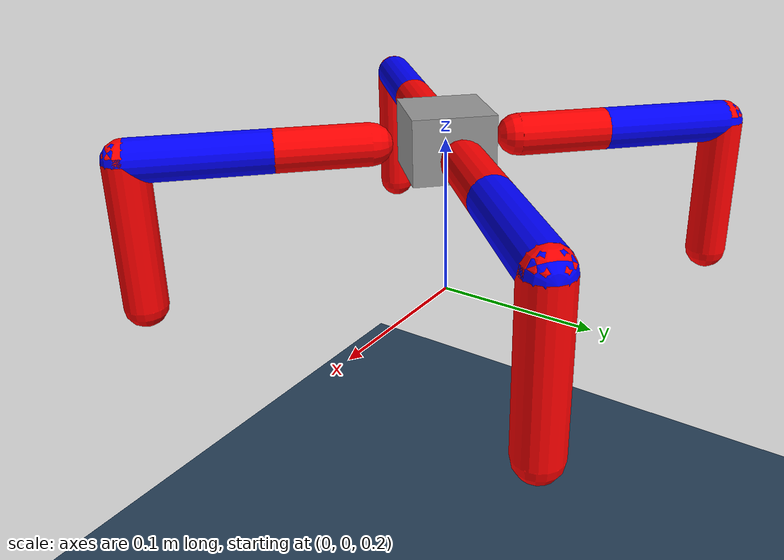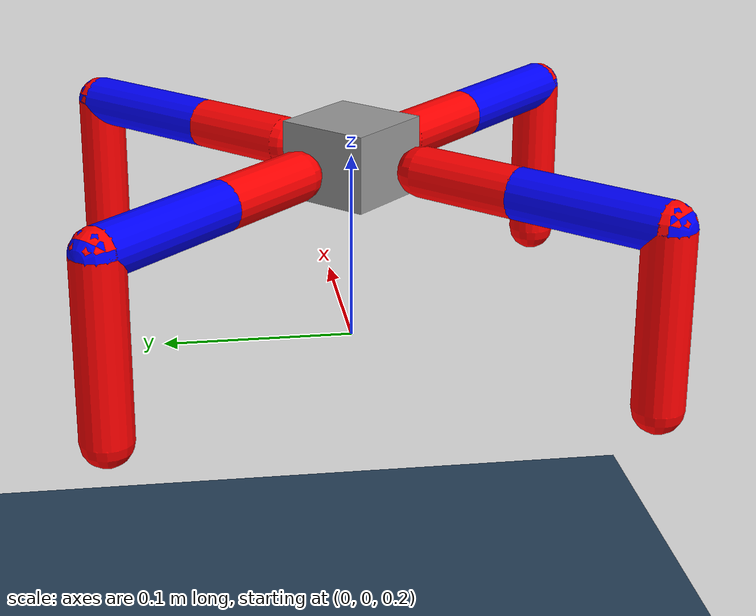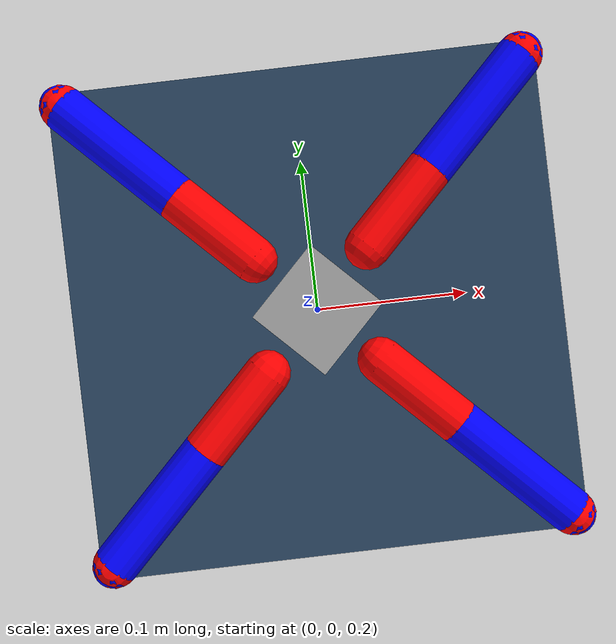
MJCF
<mujoco model="qutee">
    <compiler angle="radian" coordinate="local"/>
    <option gravity="0 0 -8.81"/>
    <visual>
        <global offwidth="800" offheight="600"/>
        <quality shadowsize="2048"/>
        <headlight ambient="0.4 0.4 0.4" diffuse="0.8 0.8 0.8" specular="0.1 0.1 0.1"/>
    </visual>

    <default>
        <position kv="10" kp="50"/>
        <joint damping="2" armature="0.01" frictionloss="0."/>
        <geom friction="0.8 0.2 0.05"/>
      <default class="shoulder">
      </default>
      <default class="elbow">
      </default>
      <default class="wrist">
      </default>
    </default>

    <!-- MATERIALS -->
    <asset>
        <texture name="texplane" type="2d" builtin="checker" width="512" height="512" rgb1="0.1 0.2 0.3" rgb2="0.2 0.3 0.4"/>
        <texture name="texgeom" type="cube" builtin="flat" mark="cross" width="127" height="127" rgb1="0.8 0.8 0.8" rgb2="0.0 0.0 0.0" markrgb="1.0 0.0 0.0"/>
        <material name="matplane" reflectance="0.3" texture="texplane" texrepeat="1 1" texuniform="true"/>
        <material name="Blue" rgba="0 0 1 1"/>
        <material name="Red" rgba="1 0 0 1"/>
        <material name="Green" rgba="0 1 0 1"/>
        <material name="Yellow" rgba="1 1 0 1"/>
        <material name="LightGrey" rgba="0.6 0.6 0.6 1.0"/>
    </asset>
    <!-- END OF MATERIALS -->

    <worldbody>
        <!-- GROUND -->
        <geom name="ground" type="plane" size="0 0 0.1" material="matplane" condim="3"/>

        <!-- TORSO -->
        <body name="base_link" pos="0 0 0.3" quat="0.9239 0 0 0.3827">
            <geom type="box" pos="0 0 0" size="0.025 0.025 0.02" material="LightGrey"/>
            <joint name="root" type="free" damping="0.01"/>

            <!-- LEG 0 -->
            <body name="leg_0_1" pos="0.045 0 0">
                <joint class="shoulder" type="hinge" axis="0 0 1" range="-1.5708 1.5708" damping="0.0" name="leg_0_shoulder" />
                <geom type="capsule" fromto="0 0 0 0.056 0 0" size="0.013" material="Red"/>
                <body name="leg_0_2" pos="0.056 0 0">
                    <joint class="elbow" type="hinge" axis="0 1 0" range="-0.7854 0.7854" damping="0.0"  name="leg_0_elbow" />
                    <geom type="capsule" fromto="0 0 0 0.081 0 0" size="0.013" material="Blue"/>
                    <body name="leg_0_3" pos="0.081 0 0.">
                        <joint class="wrist" type="hinge" axis="0 -1 0" range="-0.7854 0.7854" damping="0.0" name="leg_0_wrist" />
                        <geom name="leg_0_3_geom" type="capsule" fromto="0 0 0 0 0 -0.09" size="0.013" material="Red"/>
                    </body>
                </body>
            </body>

            <!-- LEG 2 -->
            <body name="leg_2_1" pos="0 -0.045 0" quat="0.7071 0 0 -0.7071">
                <joint class="shoulder" type="hinge" axis="0 0 1" range="-1.5708 1.5708" damping="0.0"  name="leg_2_shoulder"/>
                <geom type="capsule" fromto="0 0 0 0.056 0 0" size="0.013" material="Red"/>
                <body name="leg_2_2" pos="0.056 0 0">
                    <joint class="elbow" type="hinge" axis="0 1 0" range="-0.7854 0.7854" damping="0.0" name="leg_2_elbow" />
                    <geom type="capsule" fromto="0 0 0 0.081 0 0" size="0.013" material="Blue"/>
                    <body name="leg_2_3" pos="0.081 0 0.">
                        <joint class="wrist" type="hinge" axis="0 -1 0" range="-0.7854 0.7854" damping="0.0" name="leg_2_wrist"/>
                        <geom name="leg_2_3_geom" type="capsule" fromto="0 0 0 0 0 -0.09" size="0.013" material="Red"/>
                    </body>
                </body>
            </body>

            <!-- LEG 3 -->
            <body name="leg_3_1" pos="-0.045 0 0" quat="0 0 0 1">
                <joint class="shoulder" type="hinge" axis="0 0 1" range="-1.5708 1.5708" damping="0.0"  name="leg_3_shoulder"/>
                <geom type="capsule" fromto="0 0 0 0.056 0 0" size="0.013" material="Red"/>
                <body name="leg_3_2" pos="0.056 0 0">
                    <joint class="elbow" type="hinge" axis="0 1 0" range="-0.7854 0.7854" damping="0.0" name="leg_3_elbow"/>
                    <geom type="capsule" fromto="0 0 0 0.081 0 0" size="0.013" material="Blue"/>
                    <body name="leg_3_3" pos="0.081 0 0.">
                        <joint class="wrist" type="hinge" axis="0 -1 0" range="-0.7854 0.7854" damping="0.0" name="leg_3_wrist"/>
                        <geom name="leg_3_3_geom" type="capsule" fromto="0 0 0 0 0 -0.09" size="0.013" material="Red"/>
                    </body>
                </body>
            </body>

            <!-- LEG 5 -->
            <body name="leg_5_1" pos="0 0.045 0" quat="0.7071 0 0 0.7071">
                <joint class="shoulder" type="hinge" axis="0 0 1" range="-1.5708 1.5708" damping="0.0"  name="leg_5_shoulder"/>
                <geom type="capsule" fromto="0 0 0 0.056 0 0" size="0.013" material="Red"/>
                <body name="leg_5_2" pos="0.056 0 0">
                    <joint class="elbow" type="hinge" axis="0 1 0" range="-0.7854 0.7854" damping="0.0"  name="leg_5_elbow" />
                    <geom type="capsule" fromto="0 0 0 0.081 0 0" size="0.013" material="Blue"/>
                    <body name="leg_5_3" pos="0.081 0 0.">
                        <joint class="wrist" type="hinge" axis="0 -1 0" range="-0.7854 0.7854" damping="0.0" name="leg_5_wrist"/>
                        <geom name="leg_5_3_geom" type="capsule" fromto="0 0 0 0 0 -0.09" size="0.013" material="Red"/>
                    </body>
                </body>
            </body>
        </body>
    </worldbody>

  <actuator>
    <position class="shoulder" name="leg_0_shoulder_pos" joint="leg_0_shoulder" ctrllimited="true" ctrlrange="-1.5708 1.5708"/>
    <position class="elbow" name="leg_0_elbow_pos" joint="leg_0_elbow" ctrllimited="true" ctrlrange="-0.7854 0.7854"/>
    <position class="wrist" name="leg_0_wrist_pos" joint="leg_0_wrist" ctrllimited="true" ctrlrange="-0.7854 0.7854"/>

    <position class="shoulder" name="leg_2_shoulder_pos" joint="leg_2_shoulder" ctrllimited="true" ctrlrange="-1.5708 1.5708"/>
    <position class="elbow" name="leg_2_elbow_pos" joint="leg_2_elbow" ctrllimited="true" ctrlrange="-0.7854 0.7854"/>
    <position class="wrist" name="leg_2_wrist_pos" joint="leg_2_wrist" ctrllimited="true" ctrlrange="-0.7854 0.7854"/>

    <position class="shoulder" name="leg_3_shoulder_pos" joint="leg_3_shoulder" ctrllimited="true" ctrlrange="-1.5708 1.5708"/>
    <position class="elbow" name="leg_3_elbow_pos" joint="leg_3_elbow" ctrllimited="true" ctrlrange="-0.7854 0.7854"/>
    <position class="wrist" name="leg_3_wrist_pos" joint="leg_3_wrist" ctrllimited="true" ctrlrange="-0.7854 0.7854"/>

    <position class="shoulder" name="leg_5_shoulder_pos" joint="leg_5_shoulder" ctrllimited="true" ctrlrange="-1.5708 1.5708"/>
    <position class="elbow" name="leg_5_elbow_pos" joint="leg_5_elbow" ctrllimited="true" ctrlrange="-0.7854 0.7854"/>
    <position class="wrist" name="leg_5_wrist_pos" joint="leg_5_wrist" ctrllimited="true" ctrlrange="-0.7854 0.7854"/>

  </actuator>
</mujoco>
